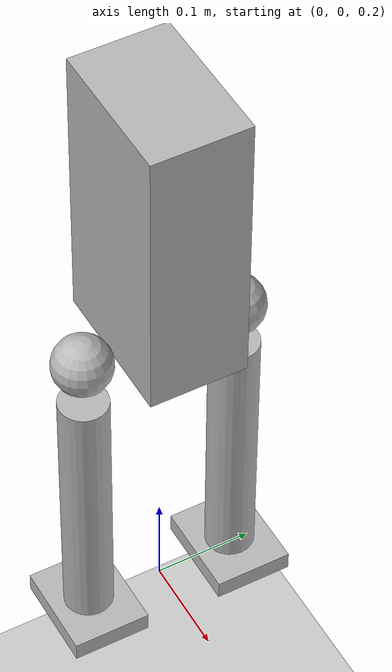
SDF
<?xml version="1.0" ?>
<sdf version="1.9">
  <world name="ardupilot_humanoid">

    <physics type="ode">
      <max_step_size>0.002</max_step_size>
      <real_time_update_rate>500</real_time_update_rate>
    </physics>

    <light type="directional" name="sun">
      <cast_shadows>true</cast_shadows>
      <pose>0 0 10 0 0 0</pose>
      <diffuse>1 1 1 1</diffuse>
      <specular>0.5 0.5 0.5 1</specular>
      <direction>-0.5 0.1 -0.9</direction>
    </light>

    <model name="ground_plane">
      <static>true</static>
      <link name="link">
        <collision name="collision">
          <geometry><plane><normal>0 0 1</normal></plane></geometry>
        </collision>
        <visual name="visual">
          <geometry><plane><normal>0 0 1</normal></plane></geometry>
          <material>
            <ambient>0.8 0.8 0.8 1</ambient>
            <diffuse>0.8 0.8 0.8 1</diffuse>
          </material>
        </visual>
      </link>
    </model>

    <plugin filename="gz-sim-physics-system" name="gz::sim::systems::Physics" />
    <plugin filename="gz-sim-user-commands-system" name="gz::sim::systems::UserCommands" />
    <plugin filename="gz-sim-scene-broadcaster-system" name="gz::sim::systems::SceneBroadcaster" />
    <plugin filename="gz-sim-sensors-system" name="gz::sim::systems::Sensors">
      <render_engine>ogre2</render_engine>
    </plugin>

    <include>
      <uri>model://biped_robot</uri>
      <name>ArduBiped_Proto</name>
      <pose>0 0 0.7 0 0 0</pose>
    </include>

  </world>
</sdf>

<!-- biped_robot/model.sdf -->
<sdf version="1.9">
  <model name="ArduBiped_Proto">
    <pose>0 0 0.6 0 0 0</pose>
    <link name="torso">
      <inertial>
        <mass>2.5</mass>
        <inertia><ixx>0.020</ixx><ixy>0</ixy><ixz>0</ixz><iyy>0.020</iyy><iyz>0</iyz><izz>0.010</izz></inertia>
      </inertial>
      <collision name="collision"><geometry><box><size>0.15 0.10 0.30</size></box></geometry></collision>
      <visual name="visual"><geometry><box><size>0.15 0.10 0.30</size></box></geometry></visual>
      <sensor name="imu_sensor" type="imu">
        <always_on>1</always_on>
        <update_rate>1000</update_rate>
      </sensor>
    </link>
    <link name="l_hip_pitch_link">
      <pose>0 0.080 -0.150 0 0 0</pose>
      <inertial><mass>0.100</mass><inertia><ixx>0.0001</ixx><ixy>0</ixy><ixz>0</ixz><iyy>0.0001</iyy><iyz>0</iyz><izz>0.0001</izz></inertia></inertial>
      <collision name="c"><geometry><sphere><radius>0.03</radius></sphere></geometry></collision>
      <visual name="v"><geometry><sphere><radius>0.03</radius></sphere></geometry></visual>
    </link>
    <link name="l_thigh">
      <pose>0 0.080 -0.350 0 0 0</pose>
      <inertial><mass>0.500</mass><inertia><ixx>0.00375</ixx><ixy>0</ixy><ixz>0</ixz><iyy>0.00375</iyy><iyz>0</iyz><izz>0.000156</izz></inertia></inertial>
      <collision name="c"><geometry><cylinder><radius>0.025</radius><length>0.3</length></cylinder></geometry></collision>
      <visual name="v"><geometry><cylinder><radius>0.025</radius><length>0.3</length></cylinder></geometry></visual>
    </link>
    <link name="l_foot">
      <pose>0 0.080 -0.500 0 0 0</pose>
      <inertial><mass>0.100</mass><inertia><ixx>0.0001</ixx><ixy>0</ixy><ixz>0</ixz><iyy>0.0001</iyy><iyz>0</iyz><izz>0.0001</izz></inertia></inertial>
      <collision name="c"><geometry><box><size>0.10 0.08 0.02</size></box></geometry></collision>
      <visual name="v"><geometry><box><size>0.10 0.08 0.02</size></box></geometry></visual>
    </link>
    <link name="r_hip_pitch_link">
      <pose>0 -0.080 -0.150 0 0 0</pose>
      <inertial><mass>0.100</mass><inertia><ixx>0.0001</ixx><ixy>0</ixy><ixz>0</ixz><iyy>0.0001</iyy><iyz>0</iyz><izz>0.0001</izz></inertia></inertial>
      <collision name="c"><geometry><sphere><radius>0.03</radius></sphere></geometry></collision>
      <visual name="v"><geometry><sphere><radius>0.03</radius></sphere></geometry></visual>
    </link>
    <link name="r_thigh">
      <pose>0 -0.080 -0.350 0 0 0</pose>
      <inertial><mass>0.500</mass><inertia><ixx>0.00375</ixx><ixy>0</ixy><ixz>0</ixz><iyy>0.00375</iyy><iyz>0</iyz><izz>0.000156</izz></inertia></inertial>
      <collision name="c"><geometry><cylinder><radius>0.025</radius><length>0.3</length></cylinder></geometry></collision>
      <visual name="v"><geometry><cylinder><radius>0.025</radius><length>0.3</length></cylinder></geometry></visual>
    </link>
    <link name="r_foot">
      <pose>0 -0.080 -0.500 0 0 0</pose>
      <inertial><mass>0.100</mass><inertia><ixx>0.0001</ixx><ixy>0</ixy><ixz>0</ixz><iyy>0.0001</iyy><iyz>0</iyz><izz>0.0001</izz></inertia></inertial>
      <collision name="c"><geometry><box><size>0.10 0.08 0.02</size></box></geometry></collision>
      <visual name="v"><geometry><box><size>0.10 0.08 0.02</size></box></geometry></visual>
    </link>
    <joint name="l_hip_pitch" type="revolute">
      <parent>torso</parent><child>l_hip_pitch_link</child>
      <axis><xyz>0 1 0</xyz><limit><lower>-1.571</lower><upper>0.523</upper><effort>20</effort><velocity>3</velocity></limit></axis>
    </joint>
    <joint name="l_knee" type="revolute">
      <parent>l_hip_pitch_link</parent><child>l_thigh</child>
      <axis><xyz>0 1 0</xyz><limit><lower>0</lower><upper>2.618</upper><effort>15</effort><velocity>3</velocity></limit></axis>
    </joint>
    <joint name="l_ankle" type="fixed">
      <parent>l_thigh</parent><child>l_foot</child>
    </joint>
    <joint name="r_hip_pitch" type="revolute">
      <parent>torso</parent><child>r_hip_pitch_link</child>
      <axis><xyz>0 1 0</xyz><limit><lower>-1.571</lower><upper>0.523</upper><effort>20</effort><velocity>3</velocity></limit></axis>
    </joint>
    <joint name="r_knee" type="revolute">
      <parent>r_hip_pitch_link</parent><child>r_thigh</child>
      <axis><xyz>0 1 0</xyz><limit><lower>0</lower><upper>2.618</upper><effort>15</effort><velocity>3</velocity></limit></axis>
    </joint>
    <joint name="r_ankle" type="fixed">
      <parent>r_thigh</parent><child>r_foot</child>
    </joint>
    <plugin name="ArduPilotPlugin" filename="ArduPilotPlugin">
      <fdm_addr>127.0.0.1</fdm_addr>
      <fdm_port_in>9002</fdm_port_in>
      <connectionTimeoutMaxCount>5</connectionTimeoutMaxCount>
      <lock_step>1</lock_step>
      <modelXYZToAirplaneXForwardZDown degrees="true">0 0 0 180 0 0</modelXYZToAirplaneXForwardZDown>
      <gazeboXYZToNED degrees="true">0 0 0 180 0 90</gazeboXYZToNED>
      <imuName>torso::imu_sensor</imuName>
      <control channel="0">
        <jointName>l_hip_pitch</jointName>
        <type>COMMAND</type>
        <cmd_topic>/l_hip_pitch/cmd</cmd_topic>
        <p_gain>2.0</p_gain>
        <servo_min>1000</servo_min><servo_max>2000</servo_max>
        <multiplier>1.571</multiplier><offset>-0.5</offset>
      </control>
      <control channel="1">
        <jointName>r_hip_pitch</jointName>
        <type>COMMAND</type>
        <cmd_topic>/r_hip_pitch/cmd</cmd_topic>
        <p_gain>2.0</p_gain>
        <servo_min>1000</servo_min><servo_max>2000</servo_max>
        <multiplier>1.571</multiplier><offset>-0.5</offset>
      </control>
      <control channel="2">
        <jointName>l_knee</jointName>
        <type>COMMAND</type>
        <cmd_topic>/l_knee/cmd</cmd_topic>
        <p_gain>2.0</p_gain>
        <servo_min>1000</servo_min><servo_max>2000</servo_max>
        <multiplier>2.618</multiplier><offset>-0.5</offset>
      </control>
      <control channel="3">
        <jointName>r_knee</jointName>
        <type>COMMAND</type>
        <cmd_topic>/r_knee/cmd</cmd_topic>
        <p_gain>2.0</p_gain>
        <servo_min>1000</servo_min><servo_max>2000</servo_max>
        <multiplier>2.618</multiplier><offset>-0.5</offset>
      </control>
    </plugin>
  </model>
</sdf>
